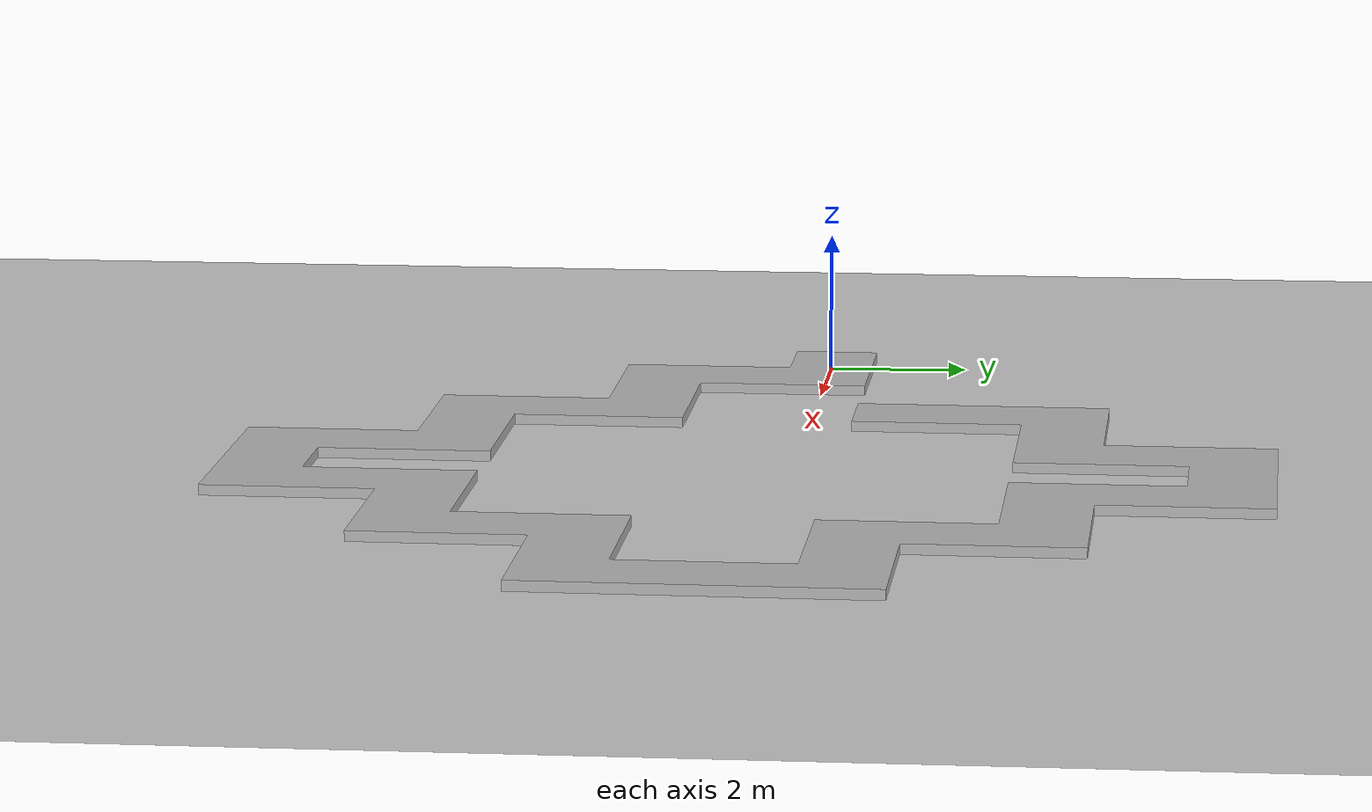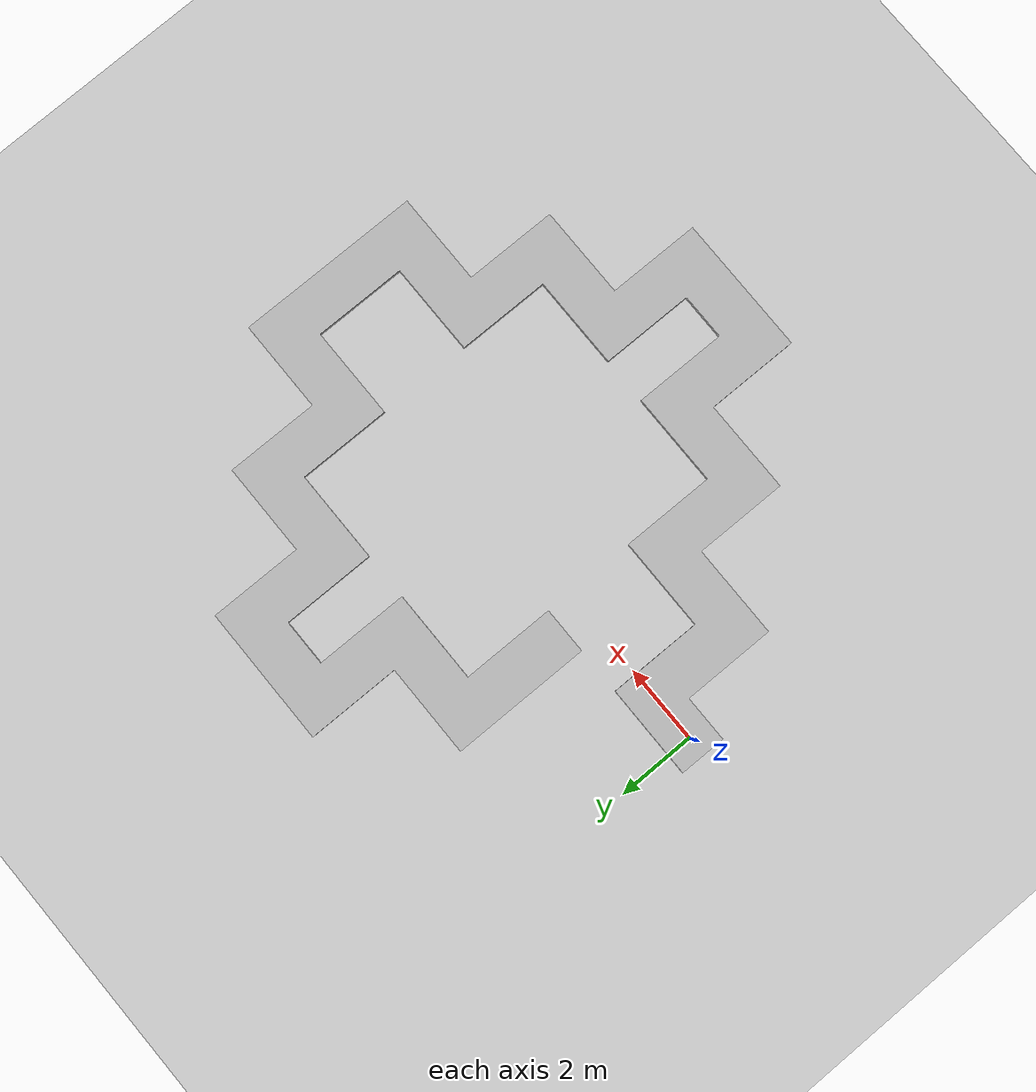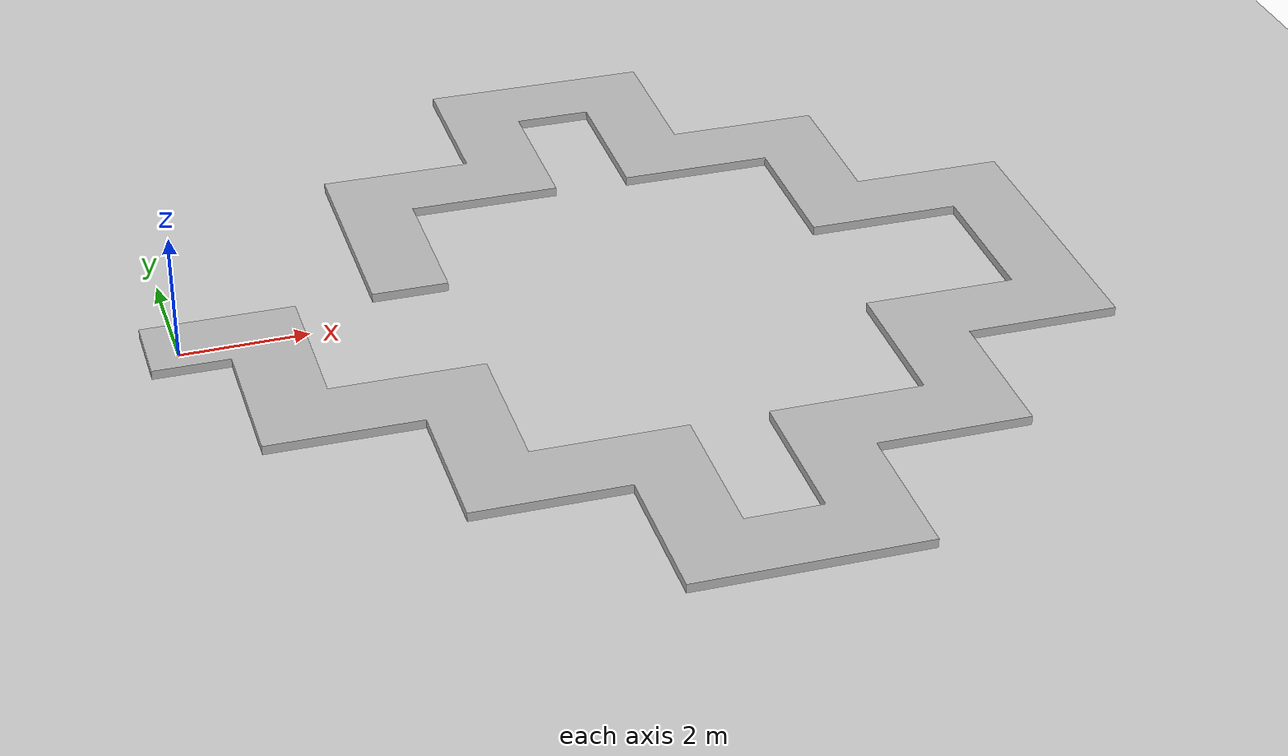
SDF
<sdf version="1.7">
 <world name="sample">
  <model name="ground_plane">
   <static>1</static>
   <link name="link">
    <collision name="collision">
     <geometry><plane><normal>0 0 1</normal><size>100 100</size></plane></geometry>
     <surface>
      <contact><collide_bitmask>65535</collide_bitmask></contact>
      <friction><ode><mu>100</mu><mu2>50</mu2></ode></friction>
     </surface>
    </collision>
    <visual name="visual">
     <cast_shadows>0</cast_shadows>
     <geometry><plane><normal>0 0 1</normal><size>100 100</size></plane></geometry>
     <material>
      <script><uri>file://media/materials/scripts/gazebo.material</uri><name>Gazebo/Grey</name></script>
     </material>
    </visual>
   </link>
  </model>
  <model name="default_plane">
   <static>1</static>
   <pose>1.5989 -2.2307 -1.4e-05 1.5708 4e-06 -1.57883</pose>
   <link name="link">
    <collision name="collision">
     <geometry>
      <mesh><scale>0.001 0.001 0.001</scale><uri>model://simpleavoid/simpleavoid.stl</uri></mesh>
     </geometry>
     <surface><friction><ode><mu>100</mu><mu2>50</mu2></ode></friction></surface>
    </collision>
    <visual name="visual">
     <geometry>
      <mesh><scale>0.001 0.001 0.001</scale><uri>model://simpleavoid/simpleavoid.stl</uri></mesh>
     </geometry>
    </visual>
   </link>
  </model>
 </world>
</sdf>
